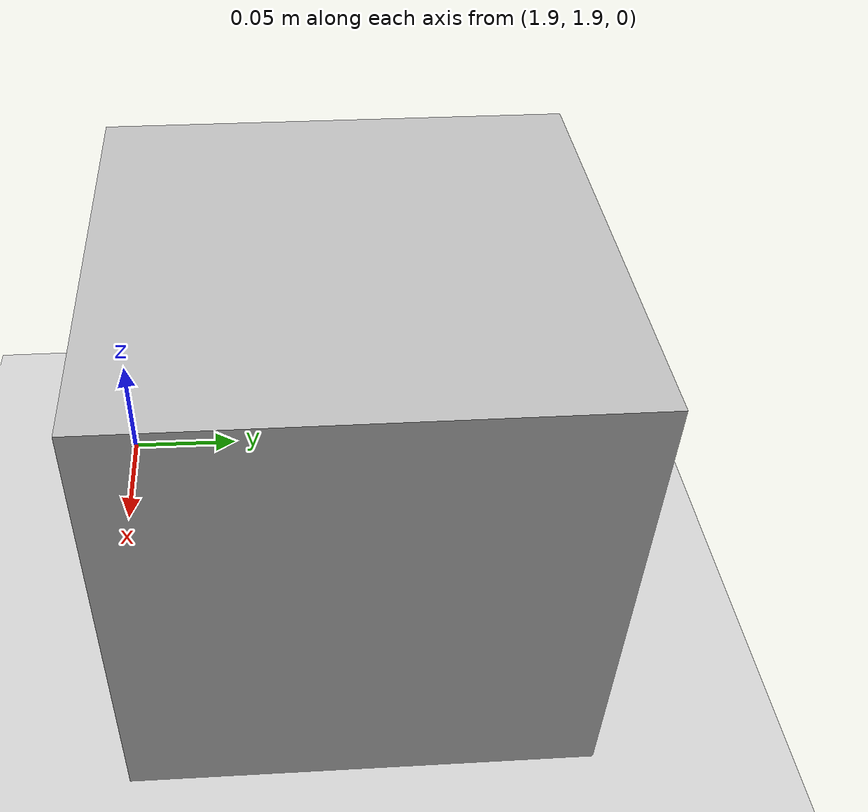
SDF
<sdf version="1.4">
    <world name="default">
       <include>
         <uri>model://sun</uri>
       </include>
       <include>
         <uri>model://ground_plane</uri>
       </include>
       <include>
         <uri>model://Example_AR</uri>
         <pose>2 2 0.09 0 0 0</pose>
       </include>

     <!--the light source created in the world file-->
      <light type="directional" name="my_light" cast_shadows="false">
      	<direction xyz="0 0 -1"/>
      	<specular rgba=".1 .1 .1 1"/>
      </light>
    </world>
</sdf>

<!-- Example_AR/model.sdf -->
<sdf version="1.5">
  <model name="Example_AR">
    <pose>0 0 0 0 0 0</pose>
    <static>true</static>
    <link name="link">
      <inertial>
        <mass>1.0</mass>
      </inertial>
      <collision name="collision">
      <geometry>
          <mesh>
            <uri>model://Example_AR/model.dae</uri>
          </mesh>
        </geometry>
      </collision>
      <visual name="visual">
        <geometry>
          <mesh>
            <uri>model://Example_AR/model.dae</uri>
          </mesh>
        </geometry>
      </visual>
    </link>
  </model>
</sdf>
